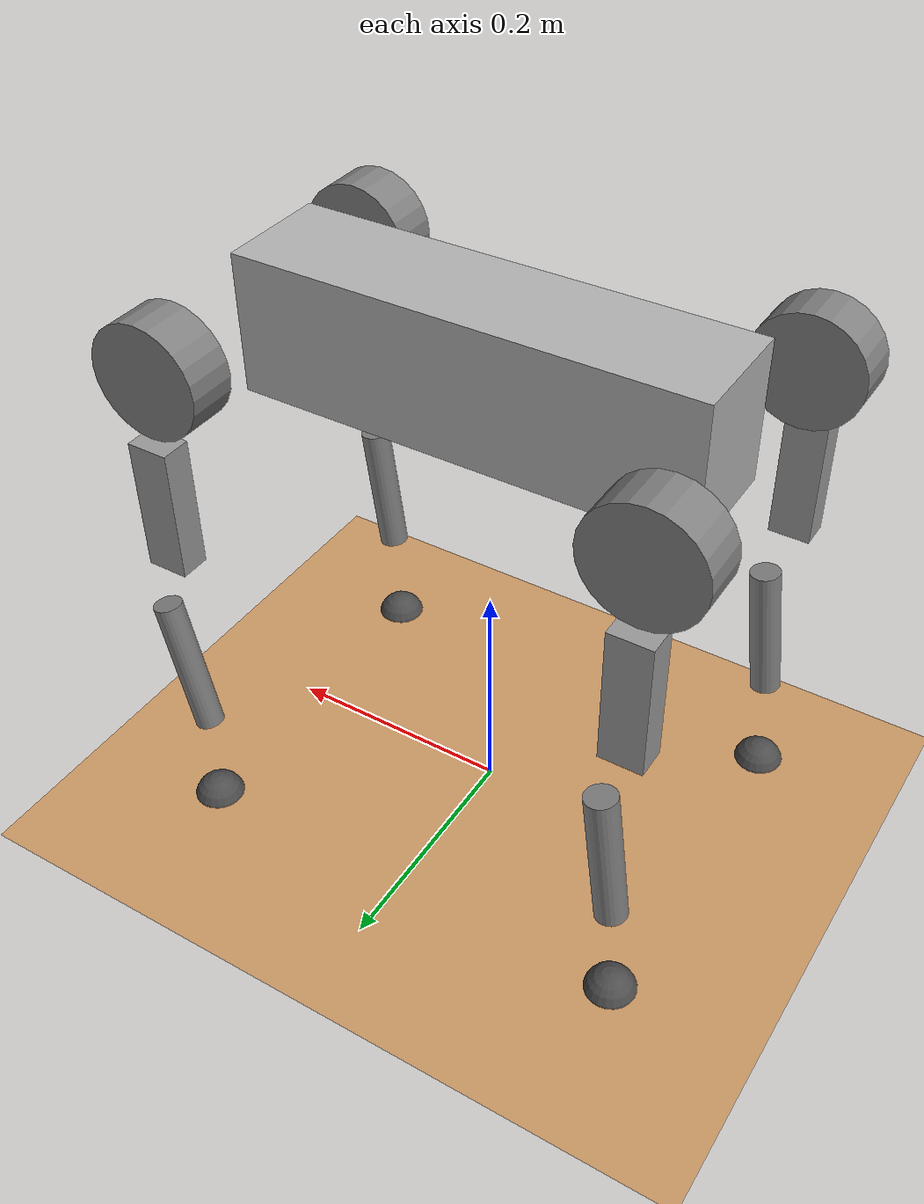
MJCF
<mujoco model="go2 scene">
  <compiler angle="radian" meshdir="dae" autolimits="true"/>

  <option timestep="0.002" iterations="50" solver="Newton" gravity="0 0 -9.81"/>

  <default>
    <geom contype="1" conaffinity="1" condim="3" friction="0.9 0.005 0.0001" rgba="0.8 0.6 0.4 1.0" margin="0.001"/>
    <joint damping="0.5" armature="0.01"/>
    <motor ctrllimited="true" ctrlrange="-33.5 33.5"/>
  </default>

  <asset>
    <mesh name="base" file="base.dae"/>
    <mesh name="hip" file="hip.dae"/>
    <mesh name="thigh" file="thigh.dae"/>
    <mesh name="thigh_mirror" file="thigh_mirror.dae"/>
    <mesh name="calf" file="calf.dae"/>
    <mesh name="calf_mirror" file="calf_mirror.dae"/>
    <mesh name="foot" file="foot.dae"/>
    <texture type="skybox" builtin="flat" rgb1="0 0 0" rgb2="0 0 0" width="512" height="3072"/>
    <texture type="2d" name="groundplane" builtin="checker" mark="edge" rgb1="0.2 0.3 0.4" rgb2="0.1 0.2 0.3" markrgb="0.8 0.8 0.8" width="300" height="300"/>
    <material name="groundplane" texture="groundplane" texuniform="true" texrepeat="5 5" reflectance="0.2"/>
  </asset>

  <worldbody>
    <light pos="0 0 3.5" dir="0 0 -1" directional="true"/>
    <geom name="floor" size="0 0 0.05" type="plane" material="groundplane"/>

    <!-- Go2 Robot -->
    <body name="base" pos="0 0 0.42">
      <inertial pos="0.021112 0 -0.005366" mass="6.921"
                diaginertia="0.107 0.098077 0.02448"/>
      <geom type="box" size="0.1881 0.04675 0.057" rgba="0.7 0.7 0.7 1"/>
      <freejoint/>

      <!-- Front Left Leg -->
      <body name="FL_hip" pos="0.1934 0.0465 0">
        <inertial pos="-0.0054 0.00194 -0.000105" mass="0.678"
                  diaginertia="0.000596 0.000884 0.00048"/>
        <joint name="FL_hip_joint" type="hinge" axis="1 0 0" range="-1.0472 1.0472" damping="0.5"/>
        <geom type="cylinder" size="0.046 0.02" pos="0 0.08 0" quat="0.707 0.707 0 0" rgba="0.5 0.5 0.5 1"/>

        <body name="FL_thigh" pos="0 0.0955 0">
          <inertial pos="-0.00374 -0.0223 -0.0327" mass="1.152"
                    diaginertia="0.00103 0.0058 0.00584"/>
          <joint name="FL_thigh_joint" type="hinge" axis="0 1 0" range="-1.5708 3.4907" damping="0.5"/>
          <geom type="box" size="0.055 0.01225 0.017" pos="0 0 -0.1065" quat="0.707 0 0.707 0" rgba="0.6 0.6 0.6 1"/>

          <body name="FL_calf" pos="0 0 -0.213">
            <inertial pos="0.00548 -0.000975 -0.115" mass="0.154"
                      diaginertia="3.29e-05 0.0011 0.00108"/>
            <joint name="FL_calf_joint" type="hinge" axis="0 1 0" range="-2.7227 -0.83776" damping="0.5"/>
            <geom type="cylinder" size="0.012 0.06" pos="0.008 0 -0.06" quat="0.995 0 0.105 0" rgba="0.5 0.5 0.5 1"/>

            <body name="FL_foot" pos="0 0 -0.213">
              <inertial pos="0 0 0" mass="0.04" diaginertia="9.6e-06 9.6e-06 9.6e-06"/>
              <geom name="FL_foot" type="sphere" size="0.022" pos="-0.002 0 0" rgba="0.3 0.3 0.3 1"/>
            </body>
          </body>
        </body>
      </body>

      <!-- Front Right Leg -->
      <body name="FR_hip" pos="0.1934 -0.0465 0">
        <inertial pos="-0.0054 -0.00194 -0.000105" mass="0.678"
                  diaginertia="0.000596 0.000884 0.00048"/>
        <joint name="FR_hip_joint" type="hinge" axis="1 0 0" range="-1.0472 1.0472" damping="0.5"/>
        <geom type="cylinder" size="0.046 0.02" pos="0 -0.08 0" quat="0.707 0.707 0 0" rgba="0.5 0.5 0.5 1"/>

        <body name="FR_thigh" pos="0 -0.0955 0">
          <inertial pos="-0.00374 0.0223 -0.0327" mass="1.152"
                    diaginertia="0.00103 0.0058 0.00584"/>
          <joint name="FR_thigh_joint" type="hinge" axis="0 1 0" range="-1.5708 3.4907" damping="0.5"/>
          <geom type="box" size="0.055 0.01225 0.017" pos="0 0 -0.1065" quat="0.707 0 0.707 0" rgba="0.6 0.6 0.6 1"/>

          <body name="FR_calf" pos="0 0 -0.213">
            <inertial pos="0.00548 0.000975 -0.115" mass="0.154"
                      diaginertia="3.29e-05 0.0011 0.00108"/>
            <joint name="FR_calf_joint" type="hinge" axis="0 1 0" range="-2.7227 -0.83776" damping="0.5"/>
            <geom type="cylinder" size="0.013 0.06" pos="0.01 0 -0.06" quat="0.998 0 0.063 0" rgba="0.5 0.5 0.5 1"/>

            <body name="FR_foot" pos="0 0 -0.213">
              <inertial pos="0 0 0" mass="0.04" diaginertia="9.6e-06 9.6e-06 9.6e-06"/>
              <geom name="FR_foot" type="sphere" size="0.022" pos="-0.002 0 0" rgba="0.3 0.3 0.3 1"/>
            </body>
          </body>
        </body>
      </body>

      <!-- Rear Left Leg -->
      <body name="RL_hip" pos="-0.1934 0.0465 0">
        <inertial pos="0.0054 0.00194 -0.000105" mass="0.678"
                  diaginertia="0.000596 0.000884 0.00048"/>
        <joint name="RL_hip_joint" type="hinge" axis="1 0 0" range="-1.0472 1.0472" damping="0.5"/>
        <geom type="cylinder" size="0.046 0.02" pos="0 0.08 0" quat="0.707 0.707 0 0" rgba="0.5 0.5 0.5 1"/>

        <body name="RL_thigh" pos="0 0.0955 0">
          <inertial pos="-0.00374 -0.0223 -0.0327" mass="1.152"
                    diaginertia="0.00103 0.0058 0.00584"/>
          <joint name="RL_thigh_joint" type="hinge" axis="0 1 0" range="-0.5236 4.5379" damping="0.5"/>
          <geom type="box" size="0.055 0.01225 0.017" pos="0 0 -0.1065" quat="0.707 0 0.707 0" rgba="0.6 0.6 0.6 1"/>

          <body name="RL_calf" pos="0 0 -0.213">
            <inertial pos="0.00548 -0.000975 -0.115" mass="0.154"
                      diaginertia="3.29e-05 0.0011 0.00108"/>
            <joint name="RL_calf_joint" type="hinge" axis="0 1 0" range="-2.7227 -0.83776" damping="0.5"/>
            <geom type="cylinder" size="0.013 0.06" pos="0.01 0 -0.06" quat="0.998 0 0.063 0" rgba="0.5 0.5 0.5 1"/>

            <body name="RL_foot" pos="0 0 -0.213">
              <inertial pos="0 0 0" mass="0.04" diaginertia="9.6e-06 9.6e-06 9.6e-06"/>
              <geom name="RL_foot" type="sphere" size="0.022" pos="-0.002 0 0" rgba="0.3 0.3 0.3 1"/>
            </body>
          </body>
        </body>
      </body>

      <!-- Rear Right Leg -->
      <body name="RR_hip" pos="-0.1934 -0.0465 0">
        <inertial pos="0.0054 -0.00194 -0.000105" mass="0.678"
                  diaginertia="0.000596 0.000884 0.00048"/>
        <joint name="RR_hip_joint" type="hinge" axis="1 0 0" range="-1.0472 1.0472" damping="0.5"/>
        <geom type="cylinder" size="0.046 0.02" pos="0 -0.08 0" quat="0.707 0.707 0 0" rgba="0.5 0.5 0.5 1"/>

        <body name="RR_thigh" pos="0 -0.0955 0">
          <inertial pos="-0.00374 0.0223 -0.0327" mass="1.152"
                    diaginertia="0.00103 0.0058 0.00584"/>
          <joint name="RR_thigh_joint" type="hinge" axis="0 1 0" range="-0.5236 4.5379" damping="0.5"/>
          <geom type="box" size="0.055 0.01225 0.017" pos="0 0 -0.1065" quat="0.707 0 0.707 0" rgba="0.6 0.6 0.6 1"/>

          <body name="RR_calf" pos="0 0 -0.213">
            <inertial pos="0.00548 0.000975 -0.115" mass="0.154"
                      diaginertia="3.29e-05 0.0011 0.00108"/>
            <joint name="RR_calf_joint" type="hinge" axis="0 1 0" range="-2.7227 -0.83776" damping="0.5"/>
            <geom type="cylinder" size="0.013 0.06" pos="0.01 0 -0.06" quat="0.998 0 0.063 0" rgba="0.5 0.5 0.5 1"/>

            <body name="RR_foot" pos="0 0 -0.213">
              <inertial pos="0 0 0" mass="0.04" diaginertia="9.6e-06 9.6e-06 9.6e-06"/>
              <geom name="RR_foot" type="sphere" size="0.022" pos="-0.002 0 0" rgba="0.3 0.3 0.3 1"/>
            </body>
          </body>
        </body>
      </body>

    </body>
  </worldbody>

  <actuator>
    <motor name="FL_hip" joint="FL_hip_joint" gear="1" ctrllimited="true" ctrlrange="-23.7 23.7"/>
    <motor name="FL_thigh" joint="FL_thigh_joint" gear="1" ctrllimited="true" ctrlrange="-23.7 23.7"/>
    <motor name="FL_calf" joint="FL_calf_joint" gear="1" ctrllimited="true" ctrlrange="-35.55 35.55"/>

    <motor name="FR_hip" joint="FR_hip_joint" gear="1" ctrllimited="true" ctrlrange="-23.7 23.7"/>
    <motor name="FR_thigh" joint="FR_thigh_joint" gear="1" ctrllimited="true" ctrlrange="-23.7 23.7"/>
    <motor name="FR_calf" joint="FR_calf_joint" gear="1" ctrllimited="true" ctrlrange="-35.55 35.55"/>

    <motor name="RL_hip" joint="RL_hip_joint" gear="1" ctrllimited="true" ctrlrange="-23.7 23.7"/>
    <motor name="RL_thigh" joint="RL_thigh_joint" gear="1" ctrllimited="true" ctrlrange="-23.7 23.7"/>
    <motor name="RL_calf" joint="RL_calf_joint" gear="1" ctrllimited="true" ctrlrange="-35.55 35.55"/>

    <motor name="RR_hip" joint="RR_hip_joint" gear="1" ctrllimited="true" ctrlrange="-23.7 23.7"/>
    <motor name="RR_thigh" joint="RR_thigh_joint" gear="1" ctrllimited="true" ctrlrange="-23.7 23.7"/>
    <motor name="RR_calf" joint="RR_calf_joint" gear="1" ctrllimited="true" ctrlrange="-35.55 35.55"/>
  </actuator>

</mujoco>
